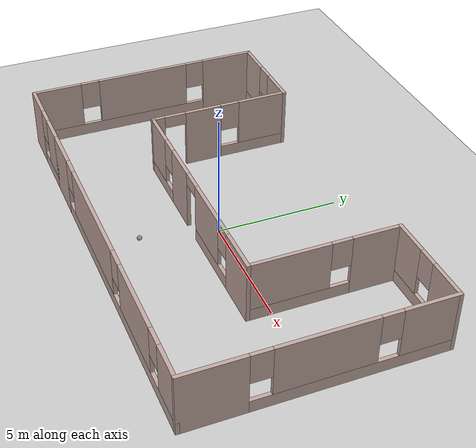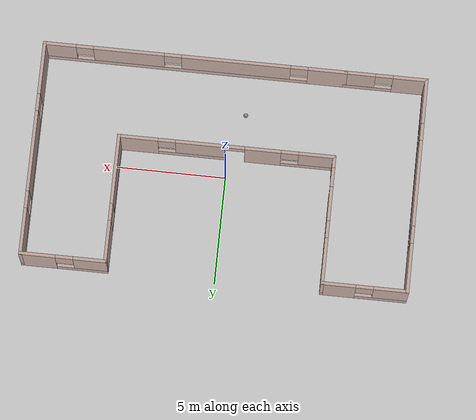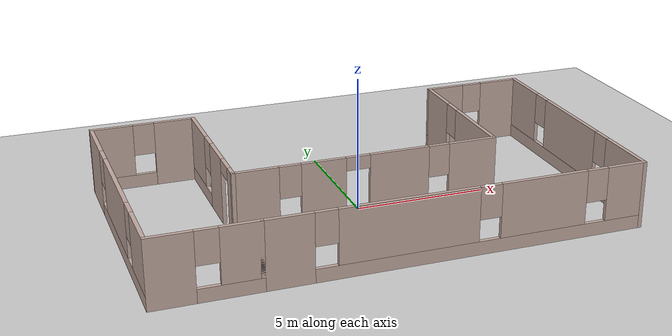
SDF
<sdf version="1.7">
 <world name="default">
  <light name="sun" type="directional">
   <pose>0 0 10 0 -0 0</pose>
   <diffuse>0.8 0.8 0.8 1</diffuse>
   <specular>0.2 0.2 0.2 1</specular>
   <attenuation>
    <range>1000</range>
    <constant>0.9</constant>
    <linear>0.01</linear>
    <quadratic>0.001</quadratic>
   </attenuation>
   <direction>-0.5 0.1 -0.9</direction>
   <spot><inner_angle>0</inner_angle><outer_angle>0</outer_angle><falloff>0</falloff></spot>
  </light>
  <model name="ground_plane">
   <static>1</static>
   <link name="link">
    <collision name="collision">
     <geometry><plane><normal>0 0 1</normal><size>100 100</size></plane></geometry>
     <surface>
      <contact><collide_bitmask>65535</collide_bitmask></contact>
      <friction><ode><mu>100</mu><mu2>50</mu2></ode></friction>
     </surface>
    </collision>
    <visual name="visual">
     <cast_shadows>0</cast_shadows>
     <geometry><plane><normal>0 0 1</normal><size>100 100</size></plane></geometry>
     <material>
      <script><uri>file://media/materials/scripts/gazebo.material</uri><name>Gazebo/Grey</name></script>
     </material>
    </visual>
   </link>
  </model>
  <gravity>0 0 -9.8</gravity>
  <magnetic_field>6e-06 2.3e-05 -4.2e-05</magnetic_field>
  <atmosphere type="adiabatic"/>
  <physics type="ode">
   <max_step_size>0.001</max_step_size>
   <real_time_factor>1</real_time_factor>
   <real_time_update_rate>1000</real_time_update_rate>
  </physics>
  <scene><ambient>0.4 0.4 0.4 1</ambient><background>0.7 0.7 0.7 1</background><shadows>1</shadows></scene>
  <spherical_coordinates>
   <surface_model>EARTH_WGS84</surface_model>
   <latitude_deg>0</latitude_deg>
   <longitude_deg>0</longitude_deg>
   <elevation>0</elevation>
   <heading_deg>0</heading_deg>
  </spherical_coordinates>
  <model name="dew">
   <pose>0.03583 -0.006852 0 0 -0 0</pose>
   <link name="Wall_0">
    <pose>1.85 -4.925 0 0 -0 0</pose>
    <visual name="Wall_0_Visual_0">
     <pose>-6.09378 0 1.25 0 -0 0</pose>
     <geometry><box><size>1.81244 0.15 2.5</size></box></geometry>
     <material>
      <script><uri>file://media/materials/scripts/gazebo.material</uri><name>Gazebo/Grey</name></script>
      <ambient>0.760784 0.662745 0.627451 1</ambient>
     </material>
     <meta><layer>0</layer></meta>
    </visual>
    <collision name="Wall_0_Collision_0">
     <geometry><box><size>1.81244 0.15 2.5</size></box></geometry>
     <pose>-6.09378 0 1.25 0 -0 0</pose>
    </collision>
    <visual name="Wall_0_Visual_1">
     <pose>0.906222 0 0.25 0 -0 0</pose>
     <geometry><box><size>12.1876 0.15 0.5</size></box></geometry>
     <material>
      <script><uri>file://media/materials/scripts/gazebo.material</uri><name>Gazebo/Grey</name></script>
      <ambient>0.760784 0.662745 0.627451 1</ambient>
     </material>
     <meta><layer>0</layer></meta>
    </visual>
    <collision name="Wall_0_Collision_1">
     <geometry><box><size>12.1876 0.15 0.5</size></box></geometry>
     <pose>0.906222 0 0.25 0 -0 0</pose>
    </collision>
    <visual name="Wall_0_Visual_2">
     <pose>-1.87981 0 1.5 0 -0 0</pose>
     <geometry><box><size>5.01549 0.15 2</size></box></geometry>
     <material>
      <script><uri>file://media/materials/scripts/gazebo.material</uri><name>Gazebo/Grey</name></script>
      <ambient>0.760784 0.662745 0.627451 1</ambient>
     </material>
     <meta><layer>0</layer></meta>
    </visual>
    <collision name="Wall_0_Collision_2">
     <geometry><box><size>5.01549 0.15 2</size></box></geometry>
     <pose>-1.87981 0 1.5 0 -0 0</pose>
    </collision>
    <visual name="Wall_0_Visual_3">
     <pose>3.05172 0 1.5 0 -0 0</pose>
     <geometry><box><size>3.24758 0.15 2</size></box></geometry>
     <material>
      <script><uri>file://media/materials/scripts/gazebo.material</uri><name>Gazebo/Grey</name></script>
      <ambient>0.760784 0.662745 0.627451 1</ambient>
     </material>
     <meta><layer>0</layer></meta>
    </visual>
    <collision name="Wall_0_Collision_3">
     <geometry><box><size>3.24758 0.15 2</size></box></geometry>
     <pose>3.05172 0 1.5 0 -0 0</pose>
    </collision>
    <visual name="Wall_0_Visual_4">
     <pose>6.23776 0 1.5 0 -0 0</pose>
     <geometry><box><size>1.52449 0.15 2</size></box></geometry>
     <material>
      <script><uri>file://media/materials/scripts/gazebo.material</uri><name>Gazebo/Grey</name></script>
      <ambient>0.760784 0.662745 0.627451 1</ambient>
     </material>
     <meta><layer>0</layer></meta>
    </visual>
    <collision name="Wall_0_Collision_4">
     <geometry><box><size>1.52449 0.15 2</size></box></geometry>
     <pose>6.23776 0 1.5 0 -0 0</pose>
    </collision>
    <visual name="Wall_0_Visual_5">
     <pose>-4.78756 0 1.9 0 -0 0</pose>
     <geometry><box><size>0.8 0.15 1.2</size></box></geometry>
     <material>
      <script><uri>file://media/materials/scripts/gazebo.material</uri><name>Gazebo/Grey</name></script>
      <ambient>0.760784 0.662745 0.627451 1</ambient>
     </material>
     <meta><layer>0</layer></meta>
    </visual>
    <collision name="Wall_0_Collision_5">
     <geometry><box><size>0.8 0.15 1.2</size></box></geometry>
     <pose>-4.78756 0 1.9 0 -0 0</pose>
    </collision>
    <visual name="Wall_0_Visual_6">
     <pose>1.02793 0 1.9 0 -0 0</pose>
     <geometry><box><size>0.8 0.15 1.2</size></box></geometry>
     <material>
      <script><uri>file://media/materials/scripts/gazebo.material</uri><name>Gazebo/Grey</name></script>
      <ambient>0.760784 0.662745 0.627451 1</ambient>
     </material>
     <meta><layer>0</layer></meta>
    </visual>
    <collision name="Wall_0_Collision_6">
     <geometry><box><size>0.8 0.15 1.2</size></box></geometry>
     <pose>1.02793 0 1.9 0 -0 0</pose>
    </collision>
    <visual name="Wall_0_Visual_7">
     <pose>5.07551 0 1.9 0 -0 0</pose>
     <geometry><box><size>0.8 0.15 1.2</size></box></geometry>
     <material>
      <script><uri>file://media/materials/scripts/gazebo.material</uri><name>Gazebo/Grey</name></script>
      <ambient>0.760784 0.662745 0.627451 1</ambient>
     </material>
     <meta><layer>0</layer></meta>
    </visual>
    <collision name="Wall_0_Collision_7">
     <geometry><box><size>0.8 0.15 1.2</size></box></geometry>
     <pose>5.07551 0 1.9 0 -0 0</pose>
    </collision>
   </link>
   <link name="Wall_10">
    <pose>8.775 0 0 0 -0 1.5708</pose>
    <visual name="Wall_10_Visual_0">
     <pose>-3.76096 0 1.25 0 -0 0</pose>
     <geometry><box><size>2.47809 0.15 2.5</size></box></geometry>
     <material>
      <script><uri>file://media/materials/scripts/gazebo.material</uri><name>Gazebo/Grey</name></script>
      <ambient>0.760784 0.662745 0.627451 1</ambient>
     </material>
     <meta><layer>0</layer></meta>
    </visual>
    <collision name="Wall_10_Collision_0">
     <geometry><box><size>2.47809 0.15 2.5</size></box></geometry>
     <pose>-3.76096 0 1.25 0 -0 0</pose>
    </collision>
    <visual name="Wall_10_Visual_1">
     <pose>1.23904 0 0.25 0 -0 0</pose>
     <geometry><box><size>7.52191 0.15 0.5</size></box></geometry>
     <material>
      <script><uri>file://media/materials/scripts/gazebo.material</uri><name>Gazebo/Grey</name></script>
      <ambient>0.760784 0.662745 0.627451 1</ambient>
     </material>
     <meta><layer>0</layer></meta>
    </visual>
    <collision name="Wall_10_Collision_1">
     <geometry><box><size>7.52191 0.15 0.5</size></box></geometry>
     <pose>1.23904 0 0.25 0 -0 0</pose>
    </collision>
    <visual name="Wall_10_Visual_2">
     <pose>0.157761 0 1.5 0 -0 0</pose>
     <geometry><box><size>3.75934 0.15 2</size></box></geometry>
     <material>
      <script><uri>file://media/materials/scripts/gazebo.material</uri><name>Gazebo/Grey</name></script>
      <ambient>0.760784 0.662745 0.627451 1</ambient>
     </material>
     <meta><layer>0</layer></meta>
    </visual>
    <collision name="Wall_10_Collision_2">
     <geometry><box><size>3.75934 0.15 2</size></box></geometry>
     <pose>0.157761 0 1.5 0 -0 0</pose>
    </collision>
    <visual name="Wall_10_Visual_3">
     <pose>3.91872 0 1.5 0 -0 0</pose>
     <geometry><box><size>2.16257 0.15 2</size></box></geometry>
     <material>
      <script><uri>file://media/materials/scripts/gazebo.material</uri><name>Gazebo/Grey</name></script>
      <ambient>0.760784 0.662745 0.627451 1</ambient>
     </material>
     <meta><layer>0</layer></meta>
    </visual>
    <collision name="Wall_10_Collision_3">
     <geometry><box><size>2.16257 0.15 2</size></box></geometry>
     <pose>3.91872 0 1.5 0 -0 0</pose>
    </collision>
    <visual name="Wall_10_Visual_4">
     <pose>-2.12191 0 1.9 0 -0 0</pose>
     <geometry><box><size>0.8 0.15 1.2</size></box></geometry>
     <material>
      <script><uri>file://media/materials/scripts/gazebo.material</uri><name>Gazebo/Grey</name></script>
      <ambient>0.760784 0.662745 0.627451 1</ambient>
     </material>
     <meta><layer>0</layer></meta>
    </visual>
    <collision name="Wall_10_Collision_4">
     <geometry><box><size>0.8 0.15 1.2</size></box></geometry>
     <pose>-2.12191 0 1.9 0 -0 0</pose>
    </collision>
    <visual name="Wall_10_Visual_5">
     <pose>2.43743 0 1.9 0 -0 0</pose>
     <geometry><box><size>0.8 0.15 1.2</size></box></geometry>
     <material>
      <script><uri>file://media/materials/scripts/gazebo.material</uri><name>Gazebo/Grey</name></script>
      <ambient>0.760784 0.662745 0.627451 1</ambient>
     </material>
     <meta><layer>0</layer></meta>
    </visual>
    <collision name="Wall_10_Collision_5">
     <geometry><box><size>0.8 0.15 1.2</size></box></geometry>
     <pose>2.43743 0 1.9 0 -0 0</pose>
    </collision>
   </link>
   <link name="Wall_12">
    <pose>6.85 4.925 0 0 -0 3.14159</pose>
    <visual name="Wall_12_Visual_0">
     <pose>-1.16797 0 1.25 0 -0 0</pose>
     <geometry><box><size>1.66406 0.15 2.5</size></box></geometry>
     <material>
      <script><uri>file://media/materials/scripts/gazebo.material</uri><name>Gazebo/Grey</name></script>
      <ambient>0.760784 0.662745 0.627451 1</ambient>
     </material>
     <meta><layer>0</layer></meta>
    </visual>
    <collision name="Wall_12_Collision_0">
     <geometry><box><size>1.66406 0.15 2.5</size></box></geometry>
     <pose>-1.16797 0 1.25 0 -0 0</pose>
    </collision>
    <visual name="Wall_12_Visual_1">
     <pose>0.832029 0 0.25 0 -0 0</pose>
     <geometry><box><size>2.33594 0.15 0.5</size></box></geometry>
     <material>
      <script><uri>file://media/materials/scripts/gazebo.material</uri><name>Gazebo/Grey</name></script>
      <ambient>0.760784 0.662745 0.627451 1</ambient>
     </material>
     <meta><layer>0</layer></meta>
    </visual>
    <collision name="Wall_12_Collision_1">
     <geometry><box><size>2.33594 0.15 0.5</size></box></geometry>
     <pose>0.832029 0 0.25 0 -0 0</pose>
    </collision>
    <visual name="Wall_12_Visual_2">
     <pose>1.23203 0 1.5 0 -0 0</pose>
     <geometry><box><size>1.53594 0.15 2</size></box></geometry>
     <material>
      <script><uri>file://media/materials/scripts/gazebo.material</uri><name>Gazebo/Grey</name></script>
      <ambient>0.760784 0.662745 0.627451 1</ambient>
     </material>
     <meta><layer>0</layer></meta>
    </visual>
    <collision name="Wall_12_Collision_2">
     <geometry><box><size>1.53594 0.15 2</size></box></geometry>
     <pose>1.23203 0 1.5 0 -0 0</pose>
    </collision>
    <visual name="Wall_12_Visual_3">
     <pose>0.064059 0 1.9 0 -0 0</pose>
     <geometry><box><size>0.8 0.15 1.2</size></box></geometry>
     <material>
      <script><uri>file://media/materials/scripts/gazebo.material</uri><name>Gazebo/Grey</name></script>
      <ambient>0.760784 0.662745 0.627451 1</ambient>
     </material>
     <meta><layer>0</layer></meta>
    </visual>
    <collision name="Wall_12_Collision_3">
     <geometry><box><size>0.8 0.15 1.2</size></box></geometry>
     <pose>0.064059 0 1.9 0 -0 0</pose>
    </collision>
   </link>
   <link name="Wall_13">
    <pose>4.925 2 0 0 -0 -1.5708</pose>
    <visual name="Wall_13_Visual_0">
     <pose>-2.01176 0 1.25 0 -0 0</pose>
     <geometry><box><size>1.97647 0.15 2.5</size></box></geometry>
     <material>
      <script><uri>file://media/materials/scripts/gazebo.material</uri><name>Gazebo/Grey</name></script>
      <ambient>0.760784 0.662745 0.627451 1</ambient>
     </material>
     <meta><layer>0</layer></meta>
    </visual>
    <collision name="Wall_13_Collision_0">
     <geometry><box><size>1.97647 0.15 2.5</size></box></geometry>
     <pose>-2.01176 0 1.25 0 -0 0</pose>
    </collision>
    <visual name="Wall_13_Visual_1">
     <pose>0.988236 0 0.25 0 -0 0</pose>
     <geometry><box><size>4.02353 0.15 0.5</size></box></geometry>
     <material>
      <script><uri>file://media/materials/scripts/gazebo.material</uri><name>Gazebo/Grey</name></script>
      <ambient>0.760784 0.662745 0.627451 1</ambient>
     </material>
     <meta><layer>0</layer></meta>
    </visual>
    <collision name="Wall_13_Collision_1">
     <geometry><box><size>4.02353 0.15 0.5</size></box></geometry>
     <pose>0.988236 0 0.25 0 -0 0</pose>
    </collision>
    <visual name="Wall_13_Visual_2">
     <pose>1.38824 0 1.5 0 -0 0</pose>
     <geometry><box><size>3.22353 0.15 2</size></box></geometry>
     <material>
      <script><uri>file://media/materials/scripts/gazebo.material</uri><name>Gazebo/Grey</name></script>
      <ambient>0.760784 0.662745 0.627451 1</ambient>
     </material>
     <meta><layer>0</layer></meta>
    </visual>
    <collision name="Wall_13_Collision_2">
     <geometry><box><size>3.22353 0.15 2</size></box></geometry>
     <pose>1.38824 0 1.5 0 -0 0</pose>
    </collision>
    <visual name="Wall_13_Visual_3">
     <pose>-0.623528 0 1.9 0 -0 0</pose>
     <geometry><box><size>0.8 0.15 1.2</size></box></geometry>
     <material>
      <script><uri>file://media/materials/scripts/gazebo.material</uri><name>Gazebo/Grey</name></script>
      <ambient>0.760784 0.662745 0.627451 1</ambient>
     </material>
     <meta><layer>0</layer></meta>
    </visual>
    <collision name="Wall_13_Collision_3">
     <geometry><box><size>0.8 0.15 1.2</size></box></geometry>
     <pose>-0.623528 0 1.9 0 -0 0</pose>
    </collision>
   </link>
   <link name="Wall_14">
    <pose>0 -0.925 0 0 -0 3.14159</pose>
    <visual name="Wall_14_Visual_0">
     <pose>-4.06918 0 1.25 0 -0 0</pose>
     <geometry><box><size>1.86164 0.15 2.5</size></box></geometry>
     <material>
      <script><uri>file://media/materials/scripts/gazebo.material</uri><name>Gazebo/Grey</name></script>
      <ambient>0.760784 0.662745 0.627451 1</ambient>
     </material>
     <meta><layer>0</layer></meta>
    </visual>
    <collision name="Wall_14_Collision_0">
     <geometry><box><size>1.86164 0.15 2.5</size></box></geometry>
     <pose>-4.06918 0 1.25 0 -0 0</pose>
    </collision>
    <visual name="Wall_14_Visual_1">
     <pose>1.65989 0 1.25 0 -0 0</pose>
     <geometry><box><size>1.66229 0.15 2.5</size></box></geometry>
     <material>
      <script><uri>file://media/materials/scripts/gazebo.material</uri><name>Gazebo/Grey</name></script>
      <ambient>0.760784 0.662745 0.627451 1</ambient>
     </material>
     <meta><layer>0</layer></meta>
    </visual>
    <collision name="Wall_14_Collision_1">
     <geometry><box><size>1.66229 0.15 2.5</size></box></geometry>
     <pose>1.65989 0 1.25 0 -0 0</pose>
    </collision>
    <visual name="Wall_14_Visual_2">
     <pose>-1.60481 0 0.25 0 -0 0</pose>
     <geometry><box><size>3.0671 0.15 0.5</size></box></geometry>
     <material>
      <script><uri>file://media/materials/scripts/gazebo.material</uri><name>Gazebo/Grey</name></script>
      <ambient>0.760784 0.662745 0.627451 1</ambient>
     </material>
     <meta><layer>0</layer></meta>
    </visual>
    <collision name="Wall_14_Collision_2">
     <geometry><box><size>3.0671 0.15 0.5</size></box></geometry>
     <pose>-1.60481 0 0.25 0 -0 0</pose>
    </collision>
    <visual name="Wall_14_Visual_3">
     <pose>3.74552 0 0.25 0 -0 0</pose>
     <geometry><box><size>2.50897 0.15 0.5</size></box></geometry>
     <material>
      <script><uri>file://media/materials/scripts/gazebo.material</uri><name>Gazebo/Grey</name></script>
      <ambient>0.760784 0.662745 0.627451 1</ambient>
     </material>
     <meta><layer>0</layer></meta>
    </visual>
    <collision name="Wall_14_Collision_3">
     <geometry><box><size>2.50897 0.15 0.5</size></box></geometry>
     <pose>3.74552 0 0.25 0 -0 0</pose>
    </collision>
    <visual name="Wall_14_Visual_4">
     <pose>-1.20481 0 1.5 0 -0 0</pose>
     <geometry><box><size>2.2671 0.15 2</size></box></geometry>
     <material>
      <script><uri>file://media/materials/scripts/gazebo.material</uri><name>Gazebo/Grey</name></script>
      <ambient>0.760784 0.662745 0.627451 1</ambient>
     </material>
     <meta><layer>0</layer></meta>
    </visual>
    <collision name="Wall_14_Collision_4">
     <geometry><box><size>2.2671 0.15 2</size></box></geometry>
     <pose>-1.20481 0 1.5 0 -0 0</pose>
    </collision>
    <visual name="Wall_14_Visual_5">
     <pose>-1.20481 0 1.5 0 -0 0</pose>
     <geometry><box><size>2.2671 0.15 2</size></box></geometry>
     <material>
      <script><uri>file://media/materials/scripts/gazebo.material</uri><name>Gazebo/Grey</name></script>
      <ambient>0.760784 0.662745 0.627451 1</ambient>
     </material>
     <meta><layer>0</layer></meta>
    </visual>
    <collision name="Wall_14_Collision_5">
     <geometry><box><size>2.2671 0.15 2</size></box></geometry>
     <pose>-1.20481 0 1.5 0 -0 0</pose>
    </collision>
    <visual name="Wall_14_Visual_6">
     <pose>4.14552 0 1.5 0 -0 0</pose>
     <geometry><box><size>1.70897 0.15 2</size></box></geometry>
     <material>
      <script><uri>file://media/materials/scripts/gazebo.material</uri><name>Gazebo/Grey</name></script>
      <ambient>0.760784 0.662745 0.627451 1</ambient>
     </material>
     <meta><layer>0</layer></meta>
    </visual>
    <collision name="Wall_14_Collision_6">
     <geometry><box><size>1.70897 0.15 2</size></box></geometry>
     <pose>4.14552 0 1.5 0 -0 0</pose>
    </collision>
    <visual name="Wall_14_Visual_7">
     <pose>-2.73836 0 1.9 0 -0 0</pose>
     <geometry><box><size>0.8 0.15 1.2</size></box></geometry>
     <material>
      <script><uri>file://media/materials/scripts/gazebo.material</uri><name>Gazebo/Grey</name></script>
      <ambient>0.760784 0.662745 0.627451 1</ambient>
     </material>
     <meta><layer>0</layer></meta>
    </visual>
    <collision name="Wall_14_Collision_7">
     <geometry><box><size>0.8 0.15 1.2</size></box></geometry>
     <pose>-2.73836 0 1.9 0 -0 0</pose>
    </collision>
    <visual name="Wall_14_Visual_8">
     <pose>2.89103 0 1.9 0 -0 0</pose>
     <geometry><box><size>0.8 0.15 1.2</size></box></geometry>
     <material>
      <script><uri>file://media/materials/scripts/gazebo.material</uri><name>Gazebo/Grey</name></script>
      <ambient>0.760784 0.662745 0.627451 1</ambient>
     </material>
     <meta><layer>0</layer></meta>
    </visual>
    <collision name="Wall_14_Collision_8">
     <geometry><box><size>0.8 0.15 1.2</size></box></geometry>
     <pose>2.89103 0 1.9 0 -0 0</pose>
    </collision>
    <visual name="Wall_14_Visual_9">
     <pose>0.378742 0 2.25 0 -0 0</pose>
     <geometry><box><size>0.9 0.15 0.5</size></box></geometry>
     <material>
      <script><uri>file://media/materials/scripts/gazebo.material</uri><name>Gazebo/Grey</name></script>
      <ambient>0.760784 0.662745 0.627451 1</ambient>
     </material>
     <meta><layer>0</layer></meta>
    </visual>
    <collision name="Wall_14_Collision_9">
     <geometry><box><size>0.9 0.15 0.5</size></box></geometry>
     <pose>0.378742 0 2.25 0 -0 0</pose>
    </collision>
    <visual name="Wall_14_Visual_10">
     <pose>0.378742 0 2.25 0 -0 0</pose>
     <geometry><box><size>0.9 0.15 0.5</size></box></geometry>
     <material>
      <script><uri>file://media/materials/scripts/gazebo.material</uri><name>Gazebo/Grey</name></script>
      <ambient>0.760784 0.662745 0.627451 1</ambient>
     </material>
     <meta><layer>0</layer></meta>
    </visual>
    <collision name="Wall_14_Collision_10">
     <geometry><box><size>0.9 0.15 0.5</size></box></geometry>
     <pose>0.378742 0 2.25 0 -0 0</pose>
    </collision>
   </link>
   <link name="Wall_15">
    <pose>-4.925 2 0 0 -0 1.5708</pose>
    <visual name="Wall_15_Visual_0">
     <pose>-2.71476 0 1.25 0 -0 0</pose>
     <geometry><box><size>0.570471 0.15 2.5</size></box></geometry>
     <material>
      <script><uri>file://media/materials/scripts/gazebo.material</uri><name>Gazebo/Grey</name></script>
      <ambient>0.760784 0.662745 0.627451 1</ambient>
     </material>
     <meta><layer>0</layer></meta>
    </visual>
    <collision name="Wall_15_Collision_0">
     <geometry><box><size>0.570471 0.15 2.5</size></box></geometry>
     <pose>-2.71476 0 1.25 0 -0 0</pose>
    </collision>
    <visual name="Wall_15_Visual_1">
     <pose>-0.746048 0 1.25 0 -0 0</pose>
     <geometry><box><size>1.56696 0.15 2.5</size></box></geometry>
     <material>
      <script><uri>file://media/materials/scripts/gazebo.material</uri><name>Gazebo/Grey</name></script>
      <ambient>0.760784 0.662745 0.627451 1</ambient>
     </material>
     <meta><layer>0</layer></meta>
    </visual>
    <collision name="Wall_15_Collision_1">
     <geometry><box><size>1.56696 0.15 2.5</size></box></geometry>
     <pose>-0.746048 0 1.25 0 -0 0</pose>
    </collision>
    <visual name="Wall_15_Visual_2">
     <pose>1.51872 0 0.25 0 -0 0</pose>
     <geometry><box><size>2.96257 0.15 0.5</size></box></geometry>
     <material>
      <script><uri>file://media/materials/scripts/gazebo.material</uri><name>Gazebo/Grey</name></script>
      <ambient>0.760784 0.662745 0.627451 1</ambient>
     </material>
     <meta><layer>0</layer></meta>
    </visual>
    <collision name="Wall_15_Collision_2">
     <geometry><box><size>2.96257 0.15 0.5</size></box></geometry>
     <pose>1.51872 0 0.25 0 -0 0</pose>
    </collision>
    <visual name="Wall_15_Visual_3">
     <pose>1.91872 0 1.5 0 -0 0</pose>
     <geometry><box><size>2.16257 0.15 2</size></box></geometry>
     <material>
      <script><uri>file://media/materials/scripts/gazebo.material</uri><name>Gazebo/Grey</name></script>
      <ambient>0.760784 0.662745 0.627451 1</ambient>
     </material>
     <meta><layer>0</layer></meta>
    </visual>
    <collision name="Wall_15_Collision_3">
     <geometry><box><size>2.16257 0.15 2</size></box></geometry>
     <pose>1.91872 0 1.5 0 -0 0</pose>
    </collision>
    <visual name="Wall_15_Visual_4">
     <pose>0.437433 0 1.9 0 -0 0</pose>
     <geometry><box><size>0.8 0.15 1.2</size></box></geometry>
     <material>
      <script><uri>file://media/materials/scripts/gazebo.material</uri><name>Gazebo/Grey</name></script>
      <ambient>0.760784 0.662745 0.627451 1</ambient>
     </material>
     <meta><layer>0</layer></meta>
    </visual>
    <collision name="Wall_15_Collision_4">
     <geometry><box><size>0.8 0.15 1.2</size></box></geometry>
     <pose>0.437433 0 1.9 0 -0 0</pose>
    </collision>
    <visual name="Wall_15_Visual_5">
     <pose>-1.97953 0 2.25 0 -0 0</pose>
     <geometry><box><size>0.9 0.15 0.5</size></box></geometry>
     <material>
      <script><uri>file://media/materials/scripts/gazebo.material</uri><name>Gazebo/Grey</name></script>
      <ambient>0.760784 0.662745 0.627451 1</ambient>
     </material>
     <meta><layer>0</layer></meta>
    </visual>
    <collision name="Wall_15_Collision_5">
     <geometry><box><size>0.9 0.15 0.5</size></box></geometry>
     <pose>-1.97953 0 2.25 0 -0 0</pose>
    </collision>
   </link>
   <link name="Wall_16">
    <pose>-6.85 4.925 0 0 -0 3.14159</pose>
    <visual name="Wall_16_Visual_0">
     <pose>-1.20222 0 1.25 0 -0 0</pose>
     <geometry><box><size>1.59556 0.15 2.5</size></box></geometry>
     <material>
      <script><uri>file://media/materials/scripts/gazebo.material</uri><name>Gazebo/Grey</name></script>
      <ambient>0.760784 0.662745 0.627451 1</ambient>
     </material>
     <meta><layer>0</layer></meta>
    </visual>
    <collision name="Wall_16_Collision_0">
     <geometry><box><size>1.59556 0.15 2.5</size></box></geometry>
     <pose>-1.20222 0 1.25 0 -0 0</pose>
    </collision>
    <visual name="Wall_16_Visual_1">
     <pose>0.797783 0 0.25 0 -0 0</pose>
     <geometry><box><size>2.40443 0.15 0.5</size></box></geometry>
     <material>
      <script><uri>file://media/materials/scripts/gazebo.material</uri><name>Gazebo/Grey</name></script>
      <ambient>0.760784 0.662745 0.627451 1</ambient>
     </material>
     <meta><layer>0</layer></meta>
    </visual>
    <collision name="Wall_16_Collision_1">
     <geometry><box><size>2.40443 0.15 0.5</size></box></geometry>
     <pose>0.797783 0 0.25 0 -0 0</pose>
    </collision>
    <visual name="Wall_16_Visual_2">
     <pose>1.19778 0 1.5 0 -0 0</pose>
     <geometry><box><size>1.60444 0.15 2</size></box></geometry>
     <material>
      <script><uri>file://media/materials/scripts/gazebo.material</uri><name>Gazebo/Grey</name></script>
      <ambient>0.760784 0.662745 0.627451 1</ambient>
     </material>
     <meta><layer>0</layer></meta>
    </visual>
    <collision name="Wall_16_Collision_2">
     <geometry><box><size>1.60444 0.15 2</size></box></geometry>
     <pose>1.19778 0 1.5 0 -0 0</pose>
    </collision>
    <visual name="Wall_16_Visual_3">
     <pose>-0.004435 0 1.9 0 -0 0</pose>
     <geometry><box><size>0.8 0.15 1.2</size></box></geometry>
     <material>
      <script><uri>file://media/materials/scripts/gazebo.material</uri><name>Gazebo/Grey</name></script>
      <ambient>0.760784 0.662745 0.627451 1</ambient>
     </material>
     <meta><layer>0</layer></meta>
    </visual>
    <collision name="Wall_16_Collision_3">
     <geometry><box><size>0.8 0.15 1.2</size></box></geometry>
     <pose>-0.004435 0 1.9 0 -0 0</pose>
    </collision>
   </link>
   <link name="Wall_17">
    <pose>-8.775 0 0 0 -0 -1.5708</pose>
    <visual name="Wall_17_Visual_0">
     <pose>-3.84893 0 1.25 0 -0 0</pose>
     <geometry><box><size>2.30214 0.15 2.5</size></box></geometry>
     <material>
      <script><uri>file://media/materials/scripts/gazebo.material</uri><name>Gazebo/Grey</name></script>
      <ambient>0.760784 0.662745 0.627451 1</ambient>
     </material>
     <meta><layer>0</layer></meta>
    </visual>
    <collision name="Wall_17_Collision_0">
     <geometry><box><size>2.30214 0.15 2.5</size></box></geometry>
     <pose>-3.84893 0 1.25 0 -0 0</pose>
    </collision>
    <visual name="Wall_17_Visual_1">
     <pose>1.15107 0 0.25 0 -0 0</pose>
     <geometry><box><size>7.69786 0.15 0.5</size></box></geometry>
     <material>
      <script><uri>file://media/materials/scripts/gazebo.material</uri><name>Gazebo/Grey</name></script>
      <ambient>0.760784 0.662745 0.627451 1</ambient>
     </material>
     <meta><layer>0</layer></meta>
    </visual>
    <collision name="Wall_17_Collision_1">
     <geometry><box><size>7.69786 0.15 0.5</size></box></geometry>
     <pose>1.15107 0 0.25 0 -0 0</pose>
    </collision>
    <visual name="Wall_17_Visual_2">
     <pose>0.09812 0 1.5 0 -0 0</pose>
     <geometry><box><size>3.99196 0.15 2</size></box></geometry>
     <material>
      <script><uri>file://media/materials/scripts/gazebo.material</uri><name>Gazebo/Grey</name></script>
      <ambient>0.760784 0.662745 0.627451 1</ambient>
     </material>
     <meta><layer>0</layer></meta>
    </visual>
    <collision name="Wall_17_Collision_2">
     <geometry><box><size>3.99196 0.15 2</size></box></geometry>
     <pose>0.09812 0 1.5 0 -0 0</pose>
    </collision>
    <visual name="Wall_17_Visual_3">
     <pose>3.94705 0 1.5 0 -0 0</pose>
     <geometry><box><size>2.1059 0.15 2</size></box></geometry>
     <material>
      <script><uri>file://media/materials/scripts/gazebo.material</uri><name>Gazebo/Grey</name></script>
      <ambient>0.760784 0.662745 0.627451 1</ambient>
     </material>
     <meta><layer>0</layer></meta>
    </visual>
    <collision name="Wall_17_Collision_3">
     <geometry><box><size>2.1059 0.15 2</size></box></geometry>
     <pose>3.94705 0 1.5 0 -0 0</pose>
    </collision>
    <visual name="Wall_17_Visual_4">
     <pose>-2.29786 0 1.9 0 -0 0</pose>
     <geometry><box><size>0.8 0.15 1.2</size></box></geometry>
     <material>
      <script><uri>file://media/materials/scripts/gazebo.material</uri><name>Gazebo/Grey</name></script>
      <ambient>0.760784 0.662745 0.627451 1</ambient>
     </material>
     <meta><layer>0</layer></meta>
    </visual>
    <collision name="Wall_17_Collision_4">
     <geometry><box><size>0.8 0.15 1.2</size></box></geometry>
     <pose>-2.29786 0 1.9 0 -0 0</pose>
    </collision>
    <visual name="Wall_17_Visual_5">
     <pose>2.4941 0 1.9 0 -0 0</pose>
     <geometry><box><size>0.8 0.15 1.2</size></box></geometry>
     <material>
      <script><uri>file://media/materials/scripts/gazebo.material</uri><name>Gazebo/Grey</name></script>
      <ambient>0.760784 0.662745 0.627451 1</ambient>
     </material>
     <meta><layer>0</layer></meta>
    </visual>
    <collision name="Wall_17_Collision_5">
     <geometry><box><size>0.8 0.15 1.2</size></box></geometry>
     <pose>2.4941 0 1.9 0 -0 0</pose>
    </collision>
   </link>
   <link name="Wall_18">
    <pose>-6.925 -4.925 0 0 -0 0</pose>
    <visual name="Wall_18_Visual_0">
     <pose>-1.12278 0 1.25 0 -0 0</pose>
     <geometry><box><size>1.60443 0.15 2.5</size></box></geometry>
     <material>
      <script><uri>file://media/materials/scripts/gazebo.material</uri><name>Gazebo/Grey</name></script>
      <ambient>0.760784 0.662745 0.627451 1</ambient>
     </material>
     <meta><layer>0</layer></meta>
    </visual>
    <collision name="Wall_18_Collision_0">
     <geometry><box><size>1.60443 0.15 2.5</size></box></geometry>
     <pose>-1.12278 0 1.25 0 -0 0</pose>
    </collision>
    <visual name="Wall_18_Visual_1">
     <pose>0.802217 0 0.25 0 -0 0</pose>
     <geometry><box><size>2.24557 0.15 0.5</size></box></geometry>
     <material>
      <script><uri>file://media/materials/scripts/gazebo.material</uri><name>Gazebo/Grey</name></script>
      <ambient>0.760784 0.662745 0.627451 1</ambient>
     </material>
     <meta><layer>0</layer></meta>
    </visual>
    <collision name="Wall_18_Collision_1">
     <geometry><box><size>2.24557 0.15 0.5</size></box></geometry>
     <pose>0.802217 0 0.25 0 -0 0</pose>
    </collision>
    <visual name="Wall_18_Visual_2">
     <pose>1.20222 0 1.5 0 -0 0</pose>
     <geometry><box><size>1.44557 0.15 2</size></box></geometry>
     <material>
      <script><uri>file://media/materials/scripts/gazebo.material</uri><name>Gazebo/Grey</name></script>
      <ambient>0.760784 0.662745 0.627451 1</ambient>
     </material>
     <meta><layer>0</layer></meta>
    </visual>
    <collision name="Wall_18_Collision_2">
     <geometry><box><size>1.44557 0.15 2</size></box></geometry>
     <pose>1.20222 0 1.5 0 -0 0</pose>
    </collision>
    <visual name="Wall_18_Visual_3">
     <pose>0.079434 0 1.9 0 -0 0</pose>
     <geometry><box><size>0.8 0.15 1.2</size></box></geometry>
     <material>
      <script><uri>file://media/materials/scripts/gazebo.material</uri><name>Gazebo/Grey</name></script>
      <ambient>0.760784 0.662745 0.627451 1</ambient>
     </material>
     <meta><layer>0</layer></meta>
    </visual>
    <collision name="Wall_18_Collision_3">
     <geometry><box><size>0.8 0.15 1.2</size></box></geometry>
     <pose>0.079434 0 1.9 0 -0 0</pose>
    </collision>
   </link>
   <static>1</static>
  </model>
  <model name="white_ball">
   <link name="link_0">
    <inertial>
     <mass>1</mass>
     <inertia><ixx>0.1</ixx><ixy>0</ixy><ixz>0</ixz><iyy>0.1</iyy><iyz>0</iyz><izz>0.1</izz></inertia>
    </inertial>
    <visual name="visual">
     <geometry><sphere><radius>0.1</radius></sphere></geometry>
     <material>
      <lighting>1</lighting>
      <script><uri>file://media/materials/scripts/gazebo.material</uri><name>Gazebo/Grey</name></script>
      <shader type="pixel"><normal_map>__default__</normal_map></shader>
      <ambient>1 1 1 1</ambient>
      <diffuse>1 1 1 1</diffuse>
      <specular>1 1 1 1</specular>
      <emissive>1 1 1 1</emissive>
     </material>
    </visual>
    <collision name="collision">
     <geometry><sphere><radius>0.1</radius></sphere></geometry>
     <surface>
      <friction>
       <ode><mu>1</mu><mu2>1</mu2><fdir1>0 0 0</fdir1><slip1>0</slip1><slip2>0</slip2></ode>
       <torsional>
        <coefficient>1</coefficient>
        <patch_radius>0</patch_radius>
        <surface_radius>0</surface_radius>
        <use_patch_radius>1</use_patch_radius>
        <ode><slip>0</slip></ode>
       </torsional>
      </friction>
      <bounce><restitution_coefficient>0</restitution_coefficient><threshold>1e+06</threshold></bounce>
      <contact>
       <collide_without_contact>0</collide_without_contact>
       <collide_without_contact_bitmask>1</collide_without_contact_bitmask>
       <collide_bitmask>1</collide_bitmask>
       <ode>
        <soft_cfm>0</soft_cfm>
        <soft_erp>0.2</soft_erp>
        <kp>1e+13</kp>
        <kd>1</kd>
        <max_vel>0.01</max_vel>
        <min_depth>0</min_depth>
       </ode>
       <bullet>
        <split_impulse>1</split_impulse>
        <split_impulse_penetration_threshold>-0.01</split_impulse_penetration_threshold>
        <soft_cfm>0</soft_cfm>
        <soft_erp>0.2</soft_erp>
        <kp>1e+13</kp>
        <kd>1</kd>
       </bullet>
      </contact>
     </surface>
    </collision>
   </link>
   <static>0</static>
   <pose>-0.64832 -3.02768 0.1 0 -0 0</pose>
  </model>
 </world>
</sdf>
